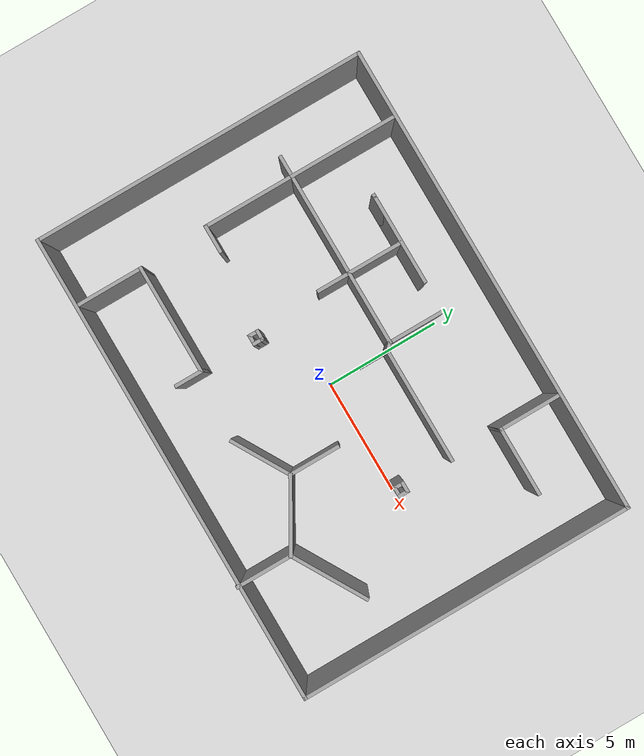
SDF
<sdf version="1.7">
 <world name="default">
  <light name="sun" type="directional">
   <pose>0 0 10 0 -0 0</pose>
   <diffuse>0.8 0.8 0.8 1</diffuse>
   <specular>0.2 0.2 0.2 1</specular>
   <attenuation>
    <range>1000</range>
    <constant>0.9</constant>
    <linear>0.01</linear>
    <quadratic>0.001</quadratic>
   </attenuation>
   <direction>-0.5 0.1 -0.9</direction>
   <spot><inner_angle>0</inner_angle><outer_angle>0</outer_angle><falloff>0</falloff></spot>
  </light>
  <model name="ground_plane">
   <static>1</static>
   <link name="link">
    <collision name="collision">
     <geometry><plane><normal>0 0 1</normal><size>100 100</size></plane></geometry>
     <surface>
      <contact><collide_bitmask>65535</collide_bitmask></contact>
      <friction><ode><mu>100</mu><mu2>50</mu2></ode></friction>
     </surface>
    </collision>
    <visual name="visual">
     <cast_shadows>0</cast_shadows>
     <geometry><plane><normal>0 0 1</normal><size>100 100</size></plane></geometry>
     <material>
      <script><uri>file://media/materials/scripts/gazebo.material</uri><name>Gazebo/Grey</name></script>
     </material>
    </visual>
   </link>
  </model>
  <gravity>0 0 -9.8</gravity>
  <magnetic_field>6e-06 2.3e-05 -4.2e-05</magnetic_field>
  <atmosphere type="adiabatic"/>
  <physics type="ode">
   <max_step_size>0.001</max_step_size>
   <real_time_factor>1</real_time_factor>
   <real_time_update_rate>1000</real_time_update_rate>
  </physics>
  <scene><ambient>0.4 0.4 0.4 1</ambient><background>0.7 0.7 0.7 1</background><shadows>1</shadows></scene>
  <spherical_coordinates>
   <surface_model>EARTH_WGS84</surface_model>
   <latitude_deg>0</latitude_deg>
   <longitude_deg>0</longitude_deg>
   <elevation>0</elevation>
   <heading_deg>0</heading_deg>
  </spherical_coordinates>
  <model name="random">
   <pose>-0.315796 0.237967 0 0 -0 0</pose>
   <link name="Wall_0">
    <collision name="Wall_0_Collision">
     <geometry><box><size>14.5 0.15 2.5</size></box></geometry>
     <pose>0 0 1.25 0 -0 0</pose>
    </collision>
    <visual name="Wall_0_Visual">
     <pose>0 0 1.25 0 -0 0</pose>
     <geometry><box><size>14.5 0.15 2.5</size></box></geometry>
     <material>
      <script><uri>file://media/materials/scripts/gazebo.material</uri><name>Gazebo/Grey</name></script>
      <ambient>1 1 1 1</ambient>
     </material>
     <meta><layer>0</layer></meta>
    </visual>
    <pose>-10.175 0.033693 0 0 -0 1.5708</pose>
   </link>
   <link name="Wall_13">
    <collision name="Wall_13_Collision">
     <geometry><box><size>4.75 0.15 2.5</size></box></geometry>
     <pose>0 0 1.25 0 -0 0</pose>
    </collision>
    <visual name="Wall_13_Visual">
     <pose>0 0 1.25 0 -0 0</pose>
     <geometry><box><size>4.75 0.15 2.5</size></box></geometry>
     <material>
      <script><uri>file://media/materials/scripts/gazebo.material</uri><name>Gazebo/Grey</name></script>
      <ambient>1 1 1 1</ambient>
     </material>
     <meta><layer>0</layer></meta>
    </visual>
    <pose>-7.35646 4.86327 0 0 -0 -1.5708</pose>
   </link>
   <link name="Wall_14">
    <collision name="Wall_14_Collision">
     <geometry><box><size>1 0.15 2.5</size></box></geometry>
     <pose>0 0 1.25 0 -0 0</pose>
    </collision>
    <visual name="Wall_14_Visual">
     <pose>0 0 1.25 0 -0 0</pose>
     <geometry><box><size>1 0.15 2.5</size></box></geometry>
     <material>
      <script><uri>file://media/materials/scripts/gazebo.material</uri><name>Gazebo/Grey</name></script>
      <ambient>1 1 1 1</ambient>
     </material>
     <meta><layer>0</layer></meta>
    </visual>
    <pose>-7.78146 2.56327 0 0 -0 3.14159</pose>
   </link>
   <link name="Wall_16">
    <collision name="Wall_16_Collision">
     <geometry><box><size>4.5 0.15 2.5</size></box></geometry>
     <pose>0 0 1.25 0 -0 0</pose>
    </collision>
    <visual name="Wall_16_Visual">
     <pose>0 0 1.25 0 -0 0</pose>
     <geometry><box><size>4.5 0.15 2.5</size></box></geometry>
     <material>
      <script><uri>file://media/materials/scripts/gazebo.material</uri><name>Gazebo/Grey</name></script>
      <ambient>1 1 1 1</ambient>
     </material>
     <meta><layer>0</layer></meta>
    </visual>
    <pose>-5.18146 2.56327 0 0 -0 0</pose>
   </link>
   <link name="Wall_17">
    <collision name="Wall_17_Collision">
     <geometry><box><size>2.5 0.15 2.5</size></box></geometry>
     <pose>0 0 1.25 0 -0 0</pose>
    </collision>
    <visual name="Wall_17_Visual">
     <pose>0 0 1.25 0 -0 0</pose>
     <geometry><box><size>2.5 0.15 2.5</size></box></geometry>
     <material>
      <script><uri>file://media/materials/scripts/gazebo.material</uri><name>Gazebo/Grey</name></script>
      <ambient>1 1 1 1</ambient>
     </material>
     <meta><layer>0</layer></meta>
    </visual>
    <pose>-3.00646 3.73827 0 0 -0 1.5708</pose>
   </link>
   <link name="Wall_19">
    <collision name="Wall_19_Collision">
     <geometry><box><size>4 0.15 2.5</size></box></geometry>
     <pose>0 0 1.25 0 -0 0</pose>
    </collision>
    <visual name="Wall_19_Visual">
     <pose>0 0 1.25 0 -0 0</pose>
     <geometry><box><size>4 0.15 2.5</size></box></geometry>
     <material>
      <script><uri>file://media/materials/scripts/gazebo.material</uri><name>Gazebo/Grey</name></script>
      <ambient>1 1 1 1</ambient>
     </material>
     <meta><layer>0</layer></meta>
    </visual>
    <pose>-7.35646 0.638266 0 0 -0 -1.5708</pose>
   </link>
   <link name="Wall_20">
    <collision name="Wall_20_Collision">
     <geometry><box><size>1.25 0.15 2.5</size></box></geometry>
     <pose>0 0 1.25 0 -0 0</pose>
    </collision>
    <visual name="Wall_20_Visual">
     <pose>0 0 1.25 0 -0 0</pose>
     <geometry><box><size>1.25 0.15 2.5</size></box></geometry>
     <material>
      <script><uri>file://media/materials/scripts/gazebo.material</uri><name>Gazebo/Grey</name></script>
      <ambient>1 1 1 1</ambient>
     </material>
     <meta><layer>0</layer></meta>
    </visual>
    <pose>-6.80646 -1.28673 0 0 -0 0</pose>
   </link>
   <link name="Wall_22">
    <collision name="Wall_22_Collision">
     <geometry><box><size>2.5 0.15 2.5</size></box></geometry>
     <pose>0 0 1.25 0 -0 0</pose>
    </collision>
    <visual name="Wall_22_Visual">
     <pose>0 0 1.25 0 -0 0</pose>
     <geometry><box><size>2.5 0.15 2.5</size></box></geometry>
     <material>
      <script><uri>file://media/materials/scripts/gazebo.material</uri><name>Gazebo/Grey</name></script>
      <ambient>1 1 1 1</ambient>
     </material>
     <meta><layer>0</layer></meta>
    </visual>
    <pose>5.21612 -6.03369 0 0 -0 -1.5708</pose>
   </link>
   <link name="Wall_24">
    <collision name="Wall_24_Collision">
     <geometry><box><size>3.5 0.15 2.5</size></box></geometry>
     <pose>0 0 1.25 0 -0 0</pose>
    </collision>
    <visual name="Wall_24_Visual">
     <pose>0 0 1.25 0 -0 0</pose>
     <geometry><box><size>3.5 0.15 2.5</size></box></geometry>
     <material>
      <script><uri>file://media/materials/scripts/gazebo.material</uri><name>Gazebo/Grey</name></script>
      <ambient>1 1 1 1</ambient>
     </material>
     <meta><layer>0</layer></meta>
    </visual>
    <pose>6.66671 -4.02119 0 0 -0 0.523599</pose>
   </link>
   <link name="Wall_26">
    <collision name="Wall_26_Collision">
     <geometry><box><size>3.25 0.15 2.5</size></box></geometry>
     <pose>0 0 1.25 0 -0 0</pose>
    </collision>
    <visual name="Wall_26_Visual">
     <pose>0 0 1.25 0 -0 0</pose>
     <geometry><box><size>3.25 0.15 2.5</size></box></geometry>
     <material>
      <script><uri>file://media/materials/scripts/gazebo.material</uri><name>Gazebo/Grey</name></script>
      <ambient>1 1 1 1</ambient>
     </material>
     <meta><layer>0</layer></meta>
    </visual>
    <pose>-1.45646 2.56327 0 0 -0 0</pose>
   </link>
   <link name="Wall_27">
    <collision name="Wall_27_Collision">
     <geometry><box><size>2.5 0.15 2.5</size></box></geometry>
     <pose>0 0 1.25 0 -0 0</pose>
    </collision>
    <visual name="Wall_27_Visual">
     <pose>0 0 1.25 0 -0 0</pose>
     <geometry><box><size>2.5 0.15 2.5</size></box></geometry>
     <material>
      <script><uri>file://media/materials/scripts/gazebo.material</uri><name>Gazebo/Grey</name></script>
      <ambient>1 1 1 1</ambient>
     </material>
     <meta><layer>0</layer></meta>
    </visual>
    <pose>0.093538 3.73827 0 0 -0 1.5708</pose>
   </link>
   <link name="Wall_29">
    <collision name="Wall_29_Collision">
     <geometry><box><size>1.5 0.15 2.5</size></box></geometry>
     <pose>0 0 1.25 0 -0 0</pose>
    </collision>
    <visual name="Wall_29_Visual">
     <pose>0 0 1.25 0 -0 0</pose>
     <geometry><box><size>1.5 0.15 2.5</size></box></geometry>
     <material>
      <script><uri>file://media/materials/scripts/gazebo.material</uri><name>Gazebo/Grey</name></script>
      <ambient>1 1 1 1</ambient>
     </material>
     <meta><layer>0</layer></meta>
    </visual>
    <pose>-3.00646 1.88827 0 0 -0 -1.5708</pose>
   </link>
   <link name="Wall_31">
    <collision name="Wall_31_Collision">
     <geometry><box><size>0.5 0.15 2.5</size></box></geometry>
     <pose>0 0 1.25 0 -0 0</pose>
    </collision>
    <visual name="Wall_31_Visual">
     <pose>0 0 1.25 0 -0 0</pose>
     <geometry><box><size>0.5 0.15 2.5</size></box></geometry>
     <material>
      <script><uri>file://media/materials/scripts/gazebo.material</uri><name>Gazebo/Grey</name></script>
      <ambient>1 1 1 1</ambient>
     </material>
     <meta><layer>0</layer></meta>
    </visual>
    <pose>0.217282 2.43952 0 0 -0 -0.785398</pose>
   </link>
   <link name="Wall_33">
    <collision name="Wall_33_Collision">
     <geometry><box><size>5 0.15 2.5</size></box></geometry>
     <pose>0 0 1.25 0 -0 0</pose>
    </collision>
    <visual name="Wall_33_Visual">
     <pose>0 0 1.25 0 -0 0</pose>
     <geometry><box><size>5 0.15 2.5</size></box></geometry>
     <material>
      <script><uri>file://media/materials/scripts/gazebo.material</uri><name>Gazebo/Grey</name></script>
      <ambient>1 1 1 1</ambient>
     </material>
     <meta><layer>0</layer></meta>
    </visual>
    <pose>2.76603 2.31578 0 0 -0 0</pose>
   </link>
   <link name="Wall_35">
    <collision name="Wall_35_Collision">
     <geometry><box><size>2.25 0.15 2.5</size></box></geometry>
     <pose>0 0 1.25 0 -0 0</pose>
    </collision>
    <visual name="Wall_35_Visual">
     <pose>0 0 1.25 0 -0 0</pose>
     <geometry><box><size>2.25 0.15 2.5</size></box></geometry>
     <material>
      <script><uri>file://media/materials/scripts/gazebo.material</uri><name>Gazebo/Grey</name></script>
      <ambient>1 1 1 1</ambient>
     </material>
     <meta><layer>0</layer></meta>
    </visual>
    <pose>-4.05646 4.91327 0 0 -0 3.14159</pose>
   </link>
   <link name="Wall_36">
    <collision name="Wall_36_Collision">
     <geometry><box><size>4 0.15 2.5</size></box></geometry>
     <pose>0 0 1.25 0 -0 0</pose>
    </collision>
    <visual name="Wall_36_Visual">
     <pose>0 0 1.25 0 -0 0</pose>
     <geometry><box><size>4 0.15 2.5</size></box></geometry>
     <material>
      <script><uri>file://media/materials/scripts/gazebo.material</uri><name>Gazebo/Grey</name></script>
      <ambient>1 1 1 1</ambient>
     </material>
     <meta><layer>0</layer></meta>
    </visual>
    <pose>-3.18146 4.91327 0 0 -0 0</pose>
   </link>
   <link name="Wall_38">
    <collision name="Wall_38_Collision">
     <geometry><box><size>2.75 0.15 2.5</size></box></geometry>
     <pose>0 0 1.25 0 -0 0</pose>
    </collision>
    <visual name="Wall_38_Visual">
     <pose>0 0 1.25 0 -0 0</pose>
     <geometry><box><size>2.75 0.15 2.5</size></box></geometry>
     <material>
      <script><uri>file://media/materials/scripts/gazebo.material</uri><name>Gazebo/Grey</name></script>
      <ambient>1 1 1 1</ambient>
     </material>
     <meta><layer>0</layer></meta>
    </visual>
    <pose>5.13502 5.84277 0 0 -0 -1.5708</pose>
   </link>
   <link name="Wall_4">
    <collision name="Wall_4_Collision">
     <geometry><box><size>20.5 0.15 2.5</size></box></geometry>
     <pose>0 0 1.25 0 -0 0</pose>
    </collision>
    <visual name="Wall_4_Visual">
     <pose>0 0 1.25 0 -0 0</pose>
     <geometry><box><size>20.5 0.15 2.5</size></box></geometry>
     <material>
      <script><uri>file://media/materials/scripts/gazebo.material</uri><name>Gazebo/Grey</name></script>
      <ambient>1 1 1 1</ambient>
     </material>
     <meta><layer>0</layer></meta>
    </visual>
    <pose>0 7.20869 0 0 -0 0</pose>
   </link>
   <link name="Wall_40">
    <collision name="Wall_40_Collision">
     <geometry><box><size>3 0.15 2.5</size></box></geometry>
     <pose>0 0 1.25 0 -0 0</pose>
    </collision>
    <visual name="Wall_40_Visual">
     <pose>0 0 1.25 0 -0 0</pose>
     <geometry><box><size>3 0.15 2.5</size></box></geometry>
     <material>
      <script><uri>file://media/materials/scripts/gazebo.material</uri><name>Gazebo/Grey</name></script>
      <ambient>1 1 1 1</ambient>
     </material>
     <meta><layer>0</layer></meta>
    </visual>
    <pose>6.56002 4.54277 0 0 -0 0</pose>
   </link>
   <link name="Wall_42">
    <collision name="Wall_42_Collision">
     <geometry><box><size>3 0.15 2.5</size></box></geometry>
     <pose>0 0 1.25 0 -0 0</pose>
    </collision>
    <visual name="Wall_42_Visual">
     <pose>0 0 1.25 0 -0 0</pose>
     <geometry><box><size>3 0.15 2.5</size></box></geometry>
     <material>
      <script><uri>file://media/materials/scripts/gazebo.material</uri><name>Gazebo/Grey</name></script>
      <ambient>1 1 1 1</ambient>
     </material>
     <meta><layer>0</layer></meta>
    </visual>
    <pose>-7.22957 -5.68341 0 0 -0 -1.5708</pose>
   </link>
   <link name="Wall_44">
    <collision name="Wall_44_Collision">
     <geometry><box><size>4.75 0.15 2.5</size></box></geometry>
     <pose>0 0 1.25 0 -0 0</pose>
    </collision>
    <visual name="Wall_44_Visual">
     <pose>0 0 1.25 0 -0 0</pose>
     <geometry><box><size>4.75 0.15 2.5</size></box></geometry>
     <material>
      <script><uri>file://media/materials/scripts/gazebo.material</uri><name>Gazebo/Grey</name></script>
      <ambient>1 1 1 1</ambient>
     </material>
     <meta><layer>0</layer></meta>
    </visual>
    <pose>-4.92957 -4.25841 0 0 -0 0</pose>
   </link>
   <link name="Wall_45">
    <collision name="Wall_45_Collision">
     <geometry><box><size>1.25 0.15 2.5</size></box></geometry>
     <pose>0 0 1.25 0 -0 0</pose>
    </collision>
    <visual name="Wall_45_Visual">
     <pose>0 0 1.25 0 -0 0</pose>
     <geometry><box><size>1.25 0.15 2.5</size></box></geometry>
     <material>
      <script><uri>file://media/materials/scripts/gazebo.material</uri><name>Gazebo/Grey</name></script>
      <ambient>1 1 1 1</ambient>
     </material>
     <meta><layer>0</layer></meta>
    </visual>
    <pose>-2.62957 -4.80841 0 0 -0 -1.5708</pose>
   </link>
   <link name="Wall_47">
    <collision name="Wall_47_Collision">
     <geometry><box><size>3.25 0.15 2.5</size></box></geometry>
     <pose>0 0 1.25 0 -0 0</pose>
    </collision>
    <visual name="Wall_47_Visual">
     <pose>0 0 1.25 0 -0 0</pose>
     <geometry><box><size>3.25 0.15 2.5</size></box></geometry>
     <material>
      <script><uri>file://media/materials/scripts/gazebo.material</uri><name>Gazebo/Grey</name></script>
      <ambient>1 1 1 1</ambient>
     </material>
     <meta><layer>0</layer></meta>
    </visual>
    <pose>3.87378 -4.08369 0 0 -0 2.61799</pose>
   </link>
   <link name="Wall_49">
    <collision name="Wall_49_Collision">
     <geometry><box><size>2.75 0.15 2.5</size></box></geometry>
     <pose>0 0 1.25 0 -0 0</pose>
    </collision>
    <visual name="Wall_49_Visual">
     <pose>0 0 1.25 0 -0 0</pose>
     <geometry><box><size>2.75 0.15 2.5</size></box></geometry>
     <material>
      <script><uri>file://media/materials/scripts/gazebo.material</uri><name>Gazebo/Grey</name></script>
      <ambient>1 1 1 1</ambient>
     </material>
     <meta><layer>0</layer></meta>
    </visual>
    <pose>1.40561 -3.95869 0 0 -0 -2.61799</pose>
   </link>
   <link name="Wall_5">
    <collision name="Wall_5_Collision">
     <geometry><box><size>14.5 0.15 2.5</size></box></geometry>
     <pose>0 0 1.25 0 -0 0</pose>
    </collision>
    <visual name="Wall_5_Visual">
     <pose>0 0 1.25 0 -0 0</pose>
     <geometry><box><size>14.5 0.15 2.5</size></box></geometry>
     <material>
      <script><uri>file://media/materials/scripts/gazebo.material</uri><name>Gazebo/Grey</name></script>
      <ambient>1 1 1 1</ambient>
     </material>
     <meta><layer>0</layer></meta>
    </visual>
    <pose>10.175 0.033693 0 0 -0 -1.5708</pose>
   </link>
   <link name="Wall_52">
    <collision name="Wall_52_Collision">
     <geometry><box><size>1.25 0.15 2.5</size></box></geometry>
     <pose>0 0 1.25 0 -0 0</pose>
    </collision>
    <visual name="Wall_52_Visual">
     <pose>0 0 1.25 0 -0 0</pose>
     <geometry><box><size>1.25 0.15 2.5</size></box></geometry>
     <material>
      <script><uri>file://media/materials/scripts/gazebo.material</uri><name>Gazebo/Grey</name></script>
      <ambient>1 1 1 1</ambient>
     </material>
     <meta><layer>0</layer></meta>
    </visual>
    <pose>0.341026 1.76578 0 0 -0 -1.5708</pose>
   </link>
   <link name="Wall_64">
    <collision name="Wall_64_Collision">
     <geometry><box><size>2.25 0.15 2.5</size></box></geometry>
     <pose>0 0 1.25 0 -0 0</pose>
    </collision>
    <visual name="Wall_64_Visual">
     <pose>0 0 1.25 0 -0 0</pose>
     <geometry><box><size>2.25 0.15 2.5</size></box></geometry>
     <material>
      <script><uri>file://media/materials/scripts/gazebo.material</uri><name>Gazebo/Grey</name></script>
      <ambient>1 1 1 1</ambient>
     </material>
     <meta><layer>0</layer></meta>
    </visual>
    <pose>2.53144 -2.25869 0 0 -0 1.5708</pose>
   </link>
   <link name="Wall_66">
    <collision name="Wall_66_Collision">
     <geometry><box><size>0.5 0.15 2.5</size></box></geometry>
     <pose>0 0 1.25 0 -0 0</pose>
    </collision>
    <visual name="Wall_66_Visual">
     <pose>0 0 1.25 0 -0 0</pose>
     <geometry><box><size>0.5 0.15 2.5</size></box></geometry>
     <material>
      <script><uri>file://media/materials/scripts/gazebo.material</uri><name>Gazebo/Grey</name></script>
      <ambient>1 1 1 1</ambient>
     </material>
     <meta><layer>0</layer></meta>
    </visual>
    <pose>5.35682 0.064157 0 0 -0 -1.5708</pose>
   </link>
   <link name="Wall_67">
    <collision name="Wall_67_Collision">
     <geometry><box><size>0.5 0.15 2.5</size></box></geometry>
     <pose>0 0 1.25 0 -0 0</pose>
    </collision>
    <visual name="Wall_67_Visual">
     <pose>0 0 1.25 0 -0 0</pose>
     <geometry><box><size>0.5 0.15 2.5</size></box></geometry>
     <material>
      <script><uri>file://media/materials/scripts/gazebo.material</uri><name>Gazebo/Grey</name></script>
      <ambient>1 1 1 1</ambient>
     </material>
     <meta><layer>0</layer></meta>
    </visual>
    <pose>5.18182 -0.110843 0 0 -0 3.14159</pose>
   </link>
   <link name="Wall_68">
    <collision name="Wall_68_Collision">
     <geometry><box><size>0.5 0.15 2.5</size></box></geometry>
     <pose>0 0 1.25 0 -0 0</pose>
    </collision>
    <visual name="Wall_68_Visual">
     <pose>0 0 1.25 0 -0 0</pose>
     <geometry><box><size>0.5 0.15 2.5</size></box></geometry>
     <material>
      <script><uri>file://media/materials/scripts/gazebo.material</uri><name>Gazebo/Grey</name></script>
      <ambient>1 1 1 1</ambient>
     </material>
     <meta><layer>0</layer></meta>
    </visual>
    <pose>5.00681 0.064157 0 0 -0 1.5708</pose>
   </link>
   <link name="Wall_69">
    <collision name="Wall_69_Collision">
     <geometry><box><size>0.5 0.15 2.5</size></box></geometry>
     <pose>0 0 1.25 0 -0 0</pose>
    </collision>
    <visual name="Wall_69_Visual">
     <pose>0 0 1.25 0 -0 0</pose>
     <geometry><box><size>0.5 0.15 2.5</size></box></geometry>
     <material>
      <script><uri>file://media/materials/scripts/gazebo.material</uri><name>Gazebo/Grey</name></script>
      <ambient>1 1 1 1</ambient>
     </material>
     <meta><layer>0</layer></meta>
    </visual>
    <pose>5.18182 0.239157 0 0 -0 0</pose>
   </link>
   <link name="Wall_7">
    <collision name="Wall_7_Collision">
     <geometry><box><size>20.5 0.15 2.5</size></box></geometry>
     <pose>0 0 1.25 0 -0 0</pose>
    </collision>
    <visual name="Wall_7_Visual">
     <pose>0 0 1.25 0 -0 0</pose>
     <geometry><box><size>20.5 0.15 2.5</size></box></geometry>
     <material>
      <script><uri>file://media/materials/scripts/gazebo.material</uri><name>Gazebo/Grey</name></script>
      <ambient>1 1 1 1</ambient>
     </material>
     <meta><layer>0</layer></meta>
    </visual>
    <pose>0 -7.14131 0 0 -0 3.14159</pose>
   </link>
   <link name="Wall_71">
    <collision name="Wall_71_Collision">
     <geometry><box><size>0.5 0.15 2.5</size></box></geometry>
     <pose>0 0 1.25 0 -0 0</pose>
    </collision>
    <visual name="Wall_71_Visual">
     <pose>0 0 1.25 0 -0 0</pose>
     <geometry><box><size>0.5 0.15 2.5</size></box></geometry>
     <material>
      <script><uri>file://media/materials/scripts/gazebo.material</uri><name>Gazebo/Grey</name></script>
      <ambient>1 1 1 1</ambient>
     </material>
     <meta><layer>0</layer></meta>
    </visual>
    <pose>-2.68058 -1.96185 0 0 -0 0</pose>
   </link>
   <link name="Wall_72">
    <collision name="Wall_72_Collision">
     <geometry><box><size>0.5 0.15 2.5</size></box></geometry>
     <pose>0 0 1.25 0 -0 0</pose>
    </collision>
    <visual name="Wall_72_Visual">
     <pose>0 0 1.25 0 -0 0</pose>
     <geometry><box><size>0.5 0.15 2.5</size></box></geometry>
     <material>
      <script><uri>file://media/materials/scripts/gazebo.material</uri><name>Gazebo/Grey</name></script>
      <ambient>1 1 1 1</ambient>
     </material>
     <meta><layer>0</layer></meta>
    </visual>
    <pose>-2.50558 -1.78685 0 0 -0 1.5708</pose>
   </link>
   <link name="Wall_73">
    <collision name="Wall_73_Collision">
     <geometry><box><size>0.5 0.15 2.5</size></box></geometry>
     <pose>0 0 1.25 0 -0 0</pose>
    </collision>
    <visual name="Wall_73_Visual">
     <pose>0 0 1.25 0 -0 0</pose>
     <geometry><box><size>0.5 0.15 2.5</size></box></geometry>
     <material>
      <script><uri>file://media/materials/scripts/gazebo.material</uri><name>Gazebo/Grey</name></script>
      <ambient>1 1 1 1</ambient>
     </material>
     <meta><layer>0</layer></meta>
    </visual>
    <pose>-2.68058 -1.61185 0 0 -0 3.14159</pose>
   </link>
   <link name="Wall_74">
    <collision name="Wall_74_Collision">
     <geometry><box><size>0.5 0.15 2.5</size></box></geometry>
     <pose>0 0 1.25 0 -0 0</pose>
    </collision>
    <visual name="Wall_74_Visual">
     <pose>0 0 1.25 0 -0 0</pose>
     <geometry><box><size>0.5 0.15 2.5</size></box></geometry>
     <material>
      <script><uri>file://media/materials/scripts/gazebo.material</uri><name>Gazebo/Grey</name></script>
      <ambient>1 1 1 1</ambient>
     </material>
     <meta><layer>0</layer></meta>
    </visual>
    <pose>-2.85558 -1.78685 0 0 -0 -1.5708</pose>
   </link>
   <static>1</static>
  </model>
 </world>
</sdf>
